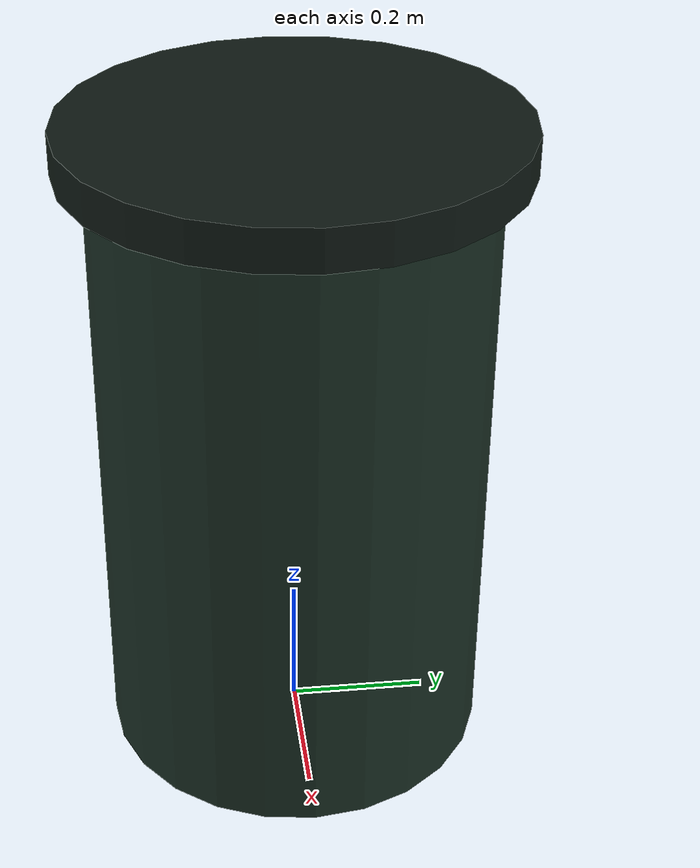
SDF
<?xml version="1.0"?>
<sdf version="1.11">
  <model name="warehouse_trash_bin">
    <static>true</static>
    <link name="link">
      <collision name="collision"><pose>0 0 0.45 0 0 0</pose><geometry><cylinder><radius>0.28</radius><length>0.9</length></cylinder></geometry></collision>
      <visual name="body"><pose>0 0 0.45 0 0 0</pose><geometry><cylinder><radius>0.28</radius><length>0.9</length></cylinder></geometry><material><ambient>0.10 0.18 0.14 1</ambient><diffuse>0.10 0.18 0.14 1</diffuse></material></visual>
      <visual name="lid"><pose>0 0 0.93 0 0 0</pose><geometry><cylinder><radius>0.32</radius><length>0.06</length></cylinder></geometry><material><ambient>0.06 0.10 0.08 1</ambient><diffuse>0.06 0.10 0.08 1</diffuse></material></visual>
    </link>
  </model>
</sdf>
